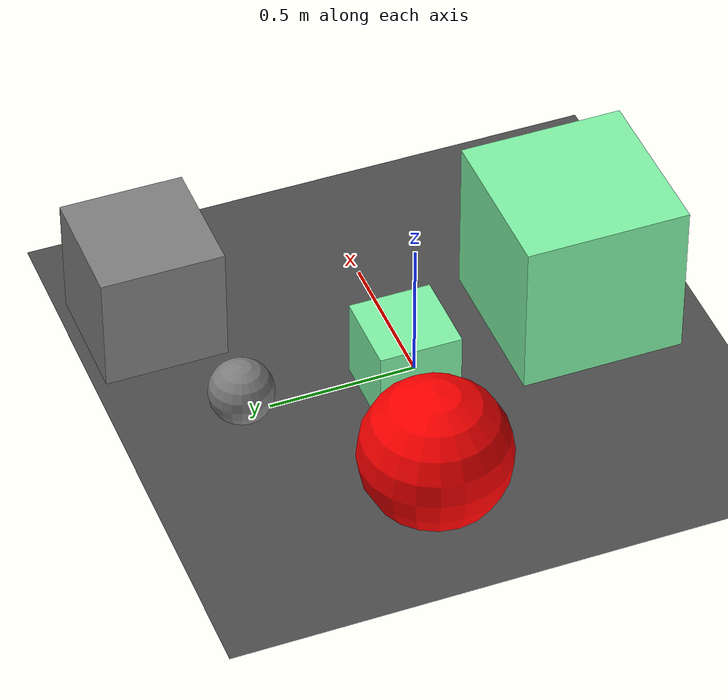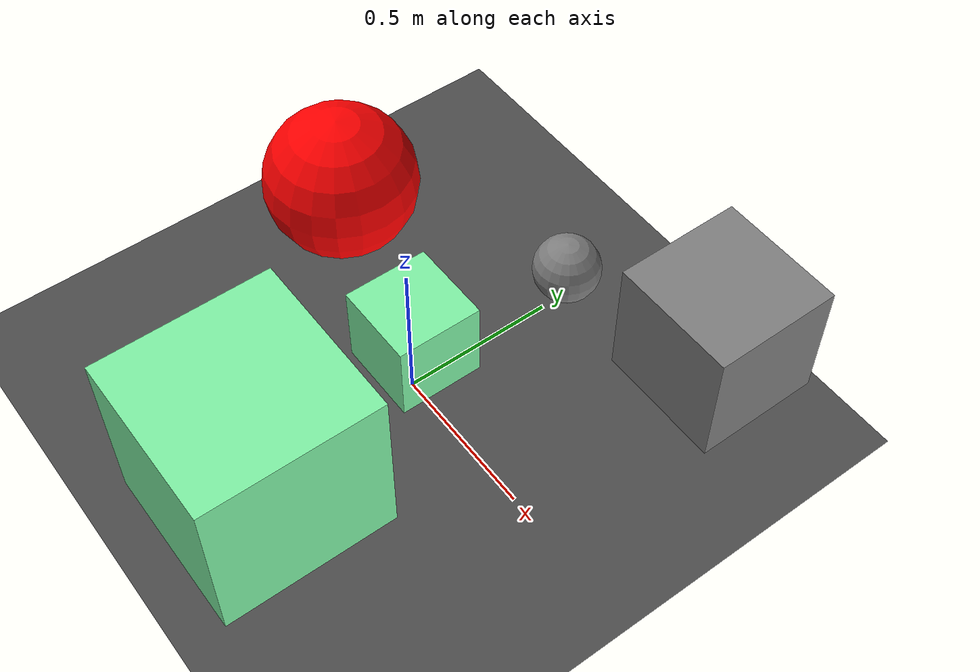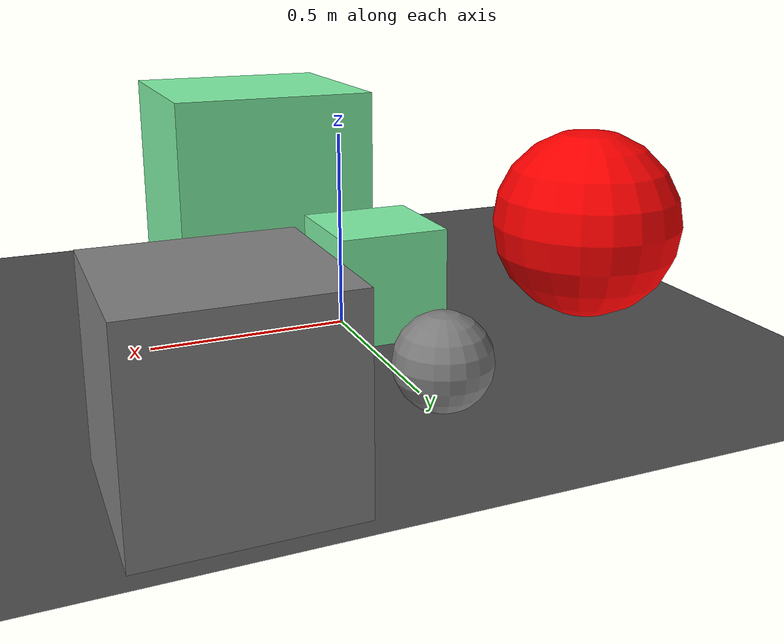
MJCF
<mujoco>
   <asset>
      <texture name="builtin_checker" builtin="checker" type="2d" rgb1="1 1 0" rgb2="0 0 1" width="200" height="200"/>
      <texture name="builtin_gradient" builtin="gradient" rgb1="0 .9 .3" rgb2="1 1 1" width="200" height="200"/>
      <texture name="builtin_flat" builtin="flat" rgb1="1 0 0" rgb2="1 0 0"  width="200" height="200"/>

      <material name="checker_mat" reflectance="0.9" texrepeat="3 3" texture="builtin_checker" texuniform="false" />
      <material name="gradient_mat" reflectance="1" texrepeat="1 1" texture="builtin_gradient" texuniform="true"/>
      <material name="flat_mat" reflectance="1" texrepeat="1 1" texture="builtin_flat" texuniform="true"/>
   </asset>

   <worldbody>
      <light diffuse=".9 .9 .9" pos="0 0 3" dir="0 0 -1"/>
     <geom type="plane" size="1 1 0.1" rgba="0.3 0.3 0.3 1"/>
<body pos="0.5 0.75 0.21">
<joint type="free"/>
 <geom type="box" size="0.21 0.21 0.21" material="checker_mat" />
</body>
<body pos="-0.01 0.6 0.11">
<joint type="free"/>
 <geom type="sphere" size="0.11 0.11 0.11" material="checker_mat" />
</body>
<body pos="-0.07 0.06 0.14">
<joint type="free"/>
 <geom type="box" size="0.14 0.14 0.14" material="gradient_mat" />
</body>
<body pos="0.07 -0.58 0.28">
<joint type="free"/>
 <geom type="box" size="0.28 0.28 0.28" material="gradient_mat" />
</body>
<body pos="-0.63 0.18 0.25">
<joint type="free"/>
 <geom type="sphere" size="0.25 0.25 0.25" material="flat_mat" />
</body><camera euler="60 0 180" fovy="60" name="camera_a" pos="0 -1.5 1"></camera>   </worldbody>
</mujoco>
